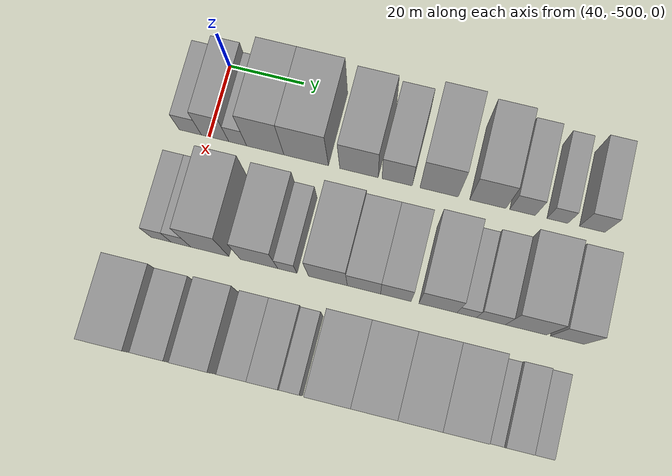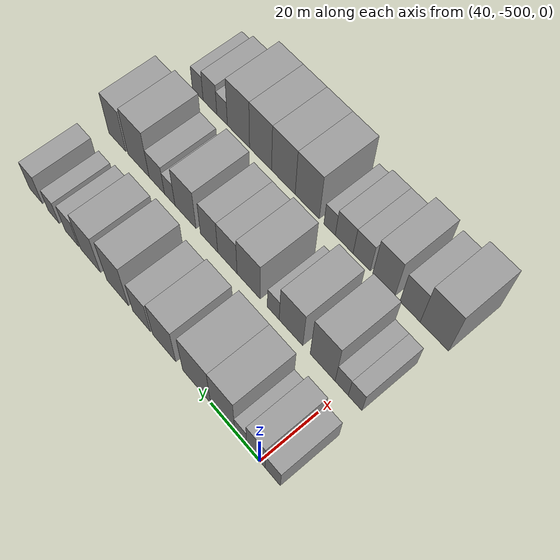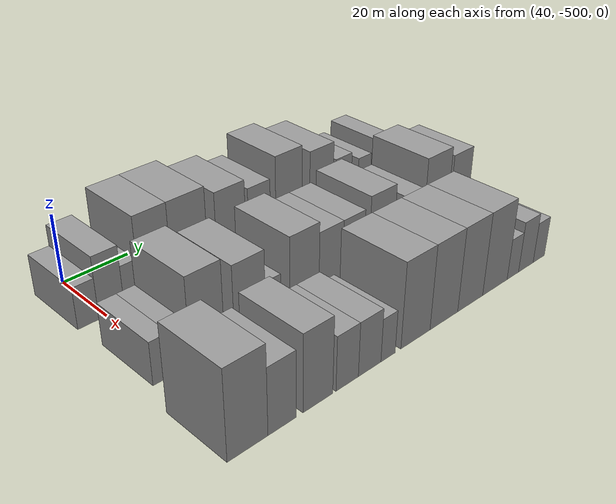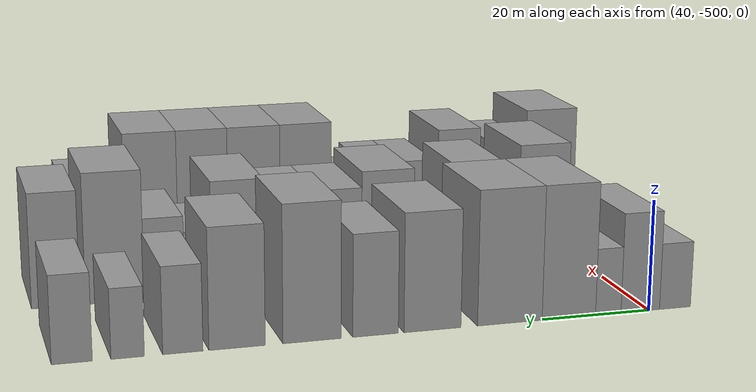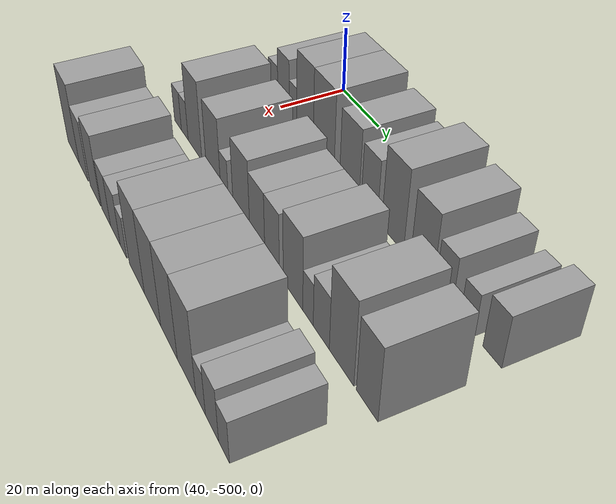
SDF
<sdf version="1.6">
 <world name="default">
  <model name="building_1">
   <static>1</static>
   <pose>50.0000 -505.0160 0 0.000000 0.000000 0.000000</pose>
   <link name="link">
    <pose>0 0 6.00 0 0 0</pose>
    <collision name="collision"><geometry><box><size>20.0000 5.9680 12.0000</size></box></geometry></collision>
    <visual name="visual">
     <cast_shadows>0</cast_shadows>
     <geometry><box><size>20.0000 5.9680 12.0000</size></box></geometry>
     <material>
      <script>
       <uri>model://grey_wall/materials/scripts</uri>
       <uri>model://grey_wall/materials/textures</uri>
       <name>vrc/grey_wall</name>
      </script>
     </material>
    </visual>
   </link>
  </model>
  <model name="building_2">
   <static>1</static>
   <pose>50.0000 -498.3636 0 0.000000 0.000000 0.000000</pose>
   <link name="link">
    <pose>0 0 9.00 0 0 0</pose>
    <collision name="collision"><geometry><box><size>20.0000 7.3369 18.0000</size></box></geometry></collision>
    <visual name="visual">
     <cast_shadows>0</cast_shadows>
     <geometry><box><size>20.0000 7.3369 18.0000</size></box></geometry>
     <material>
      <script>
       <uri>model://grey_wall/materials/scripts</uri>
       <uri>model://grey_wall/materials/textures</uri>
       <name>vrc/grey_wall</name>
      </script>
     </material>
    </visual>
   </link>
  </model>
  <model name="building_3">
   <static>1</static>
   <pose>50.0000 -492.2943 0 0.000000 0.000000 0.000000</pose>
   <link name="link">
    <pose>0 0 6.00 0 0 0</pose>
    <collision name="collision"><geometry><box><size>20.0000 4.8018 12.0000</size></box></geometry></collision>
    <visual name="visual">
     <cast_shadows>0</cast_shadows>
     <geometry><box><size>20.0000 4.8018 12.0000</size></box></geometry>
     <material>
      <script>
       <uri>model://grey_wall/materials/scripts</uri>
       <uri>model://grey_wall/materials/textures</uri>
       <name>vrc/grey_wall</name>
      </script>
     </material>
    </visual>
   </link>
  </model>
  <model name="building_4">
   <static>1</static>
   <pose>50.0000 -484.9123 0 0.000000 0.000000 0.000000</pose>
   <link name="link">
    <pose>0 0 12.00 0 0 0</pose>
    <collision name="collision"><geometry><box><size>20.0000 9.9623 24.0000</size></box></geometry></collision>
    <visual name="visual">
     <cast_shadows>0</cast_shadows>
     <geometry><box><size>20.0000 9.9623 24.0000</size></box></geometry>
     <material>
      <script>
       <uri>model://grey_wall/materials/scripts</uri>
       <uri>model://grey_wall/materials/textures</uri>
       <name>vrc/grey_wall</name>
      </script>
     </material>
    </visual>
   </link>
  </model>
  <model name="building_5">
   <static>1</static>
   <pose>50.0000 -474.0198 0 0.000000 0.000000 0.000000</pose>
   <link name="link">
    <pose>0 0 12.00 0 0 0</pose>
    <collision name="collision"><geometry><box><size>20.0000 11.8226 24.0000</size></box></geometry></collision>
    <visual name="visual">
     <cast_shadows>0</cast_shadows>
     <geometry><box><size>20.0000 11.8226 24.0000</size></box></geometry>
     <material>
      <script>
       <uri>model://grey_wall/materials/scripts</uri>
       <uri>model://grey_wall/materials/textures</uri>
       <name>vrc/grey_wall</name>
      </script>
     </material>
    </visual>
   </link>
  </model>
  <model name="building_6">
   <static>1</static>
   <pose>50.0000 -460.0245 0 0.000000 0.000000 0.000000</pose>
   <link name="link">
    <pose>0 0 10.50 0 0 0</pose>
    <collision name="collision"><geometry><box><size>20.0000 10.1681 21.0000</size></box></geometry></collision>
    <visual name="visual">
     <cast_shadows>0</cast_shadows>
     <geometry><box><size>20.0000 10.1681 21.0000</size></box></geometry>
     <material>
      <script>
       <uri>model://grey_wall/materials/scripts</uri>
       <uri>model://grey_wall/materials/textures</uri>
       <name>vrc/grey_wall</name>
      </script>
     </material>
    </visual>
   </link>
  </model>
  <model name="building_7">
   <static>1</static>
   <pose>50.0000 -449.9485 0 0.000000 0.000000 0.000000</pose>
   <link name="link">
    <pose>0 0 9.00 0 0 0</pose>
    <collision name="collision"><geometry><box><size>20.0000 7.9838 18.0000</size></box></geometry></collision>
    <visual name="visual">
     <cast_shadows>0</cast_shadows>
     <geometry><box><size>20.0000 7.9838 18.0000</size></box></geometry>
     <material>
      <script>
       <uri>model://grey_wall/materials/scripts</uri>
       <uri>model://grey_wall/materials/textures</uri>
       <name>vrc/grey_wall</name>
      </script>
     </material>
    </visual>
   </link>
  </model>
  <model name="building_8">
   <static>1</static>
   <pose>50.0000 -438.9323 0 0.000000 0.000000 0.000000</pose>
   <link name="link">
    <pose>0 0 12.00 0 0 0</pose>
    <collision name="collision"><geometry><box><size>20.0000 10.0486 24.0000</size></box></geometry></collision>
    <visual name="visual">
     <cast_shadows>0</cast_shadows>
     <geometry><box><size>20.0000 10.0486 24.0000</size></box></geometry>
     <material>
      <script>
       <uri>model://grey_wall/materials/scripts</uri>
       <uri>model://grey_wall/materials/textures</uri>
       <name>vrc/grey_wall</name>
      </script>
     </material>
    </visual>
   </link>
  </model>
  <model name="building_9">
   <static>1</static>
   <pose>50.0000 -426.1717 0 0.000000 0.000000 0.000000</pose>
   <link name="link">
    <pose>0 0 10.50 0 0 0</pose>
    <collision name="collision"><geometry><box><size>20.0000 9.4726 21.0000</size></box></geometry></collision>
    <visual name="visual">
     <cast_shadows>0</cast_shadows>
     <geometry><box><size>20.0000 9.4726 21.0000</size></box></geometry>
     <material>
      <script>
       <uri>model://grey_wall/materials/scripts</uri>
       <uri>model://grey_wall/materials/textures</uri>
       <name>vrc/grey_wall</name>
      </script>
     </material>
    </visual>
   </link>
  </model>
  <model name="building_10">
   <static>1</static>
   <pose>50.0000 -417.1049 0 0.000000 0.000000 0.000000</pose>
   <link name="link">
    <pose>0 0 7.50 0 0 0</pose>
    <collision name="collision"><geometry><box><size>20.0000 6.6611 15.0000</size></box></geometry></collision>
    <visual name="visual">
     <cast_shadows>0</cast_shadows>
     <geometry><box><size>20.0000 6.6611 15.0000</size></box></geometry>
     <material>
      <script>
       <uri>model://grey_wall/materials/scripts</uri>
       <uri>model://grey_wall/materials/textures</uri>
       <name>vrc/grey_wall</name>
      </script>
     </material>
    </visual>
   </link>
  </model>
  <model name="building_11">
   <static>1</static>
   <pose>50.0000 -408.0522 0 0.000000 0.000000 0.000000</pose>
   <link name="link">
    <pose>0 0 6.00 0 0 0</pose>
    <collision name="collision"><geometry><box><size>20.0000 5.4442 12.0000</size></box></geometry></collision>
    <visual name="visual">
     <cast_shadows>0</cast_shadows>
     <geometry><box><size>20.0000 5.4442 12.0000</size></box></geometry>
     <material>
      <script>
       <uri>model://grey_wall/materials/scripts</uri>
       <uri>model://grey_wall/materials/textures</uri>
       <name>vrc/grey_wall</name>
      </script>
     </material>
    </visual>
   </link>
  </model>
  <model name="building_12">
   <static>1</static>
   <pose>50.0000 -399.0358 0 0.000000 0.000000 0.000000</pose>
   <link name="link">
    <pose>0 0 7.50 0 0 0</pose>
    <collision name="collision"><geometry><box><size>20.0000 6.5886 15.0000</size></box></geometry></collision>
    <visual name="visual">
     <cast_shadows>0</cast_shadows>
     <geometry><box><size>20.0000 6.5886 15.0000</size></box></geometry>
     <material>
      <script>
       <uri>model://grey_wall/materials/scripts</uri>
       <uri>model://grey_wall/materials/textures</uri>
       <name>vrc/grey_wall</name>
      </script>
     </material>
    </visual>
   </link>
  </model>
  <model name="building_117">
   <static>1</static>
   <pose>79.0000 -504.3518 0 0.000000 0.000000 0.000000</pose>
   <link name="link">
    <pose>0 0 6.00 0 0 0</pose>
    <collision name="collision"><geometry><box><size>20.0000 5.2963 12.0000</size></box></geometry></collision>
    <visual name="visual">
     <cast_shadows>0</cast_shadows>
     <geometry><box><size>20.0000 5.2963 12.0000</size></box></geometry>
     <material>
      <script>
       <uri>model://grey_wall/materials/scripts</uri>
       <uri>model://grey_wall/materials/textures</uri>
       <name>vrc/grey_wall</name>
      </script>
     </material>
    </visual>
   </link>
  </model>
  <model name="building_118">
   <static>1</static>
   <pose>79.0000 -499.1225 0 0.000000 0.000000 0.000000</pose>
   <link name="link">
    <pose>0 0 6.00 0 0 0</pose>
    <collision name="collision"><geometry><box><size>20.0000 5.1624 12.0000</size></box></geometry></collision>
    <visual name="visual">
     <cast_shadows>0</cast_shadows>
     <geometry><box><size>20.0000 5.1624 12.0000</size></box></geometry>
     <material>
      <script>
       <uri>model://grey_wall/materials/scripts</uri>
       <uri>model://grey_wall/materials/textures</uri>
       <name>vrc/grey_wall</name>
      </script>
     </material>
    </visual>
   </link>
  </model>
  <model name="building_119">
   <static>1</static>
   <pose>79.0000 -491.5424 0 0.000000 0.000000 0.000000</pose>
   <link name="link">
    <pose>0 0 12.00 0 0 0</pose>
    <collision name="collision"><geometry><box><size>20.0000 9.9978 24.0000</size></box></geometry></collision>
    <visual name="visual">
     <cast_shadows>0</cast_shadows>
     <geometry><box><size>20.0000 9.9978 24.0000</size></box></geometry>
     <material>
      <script>
       <uri>model://grey_wall/materials/scripts</uri>
       <uri>model://grey_wall/materials/textures</uri>
       <name>vrc/grey_wall</name>
      </script>
     </material>
    </visual>
   </link>
  </model>
  <model name="building_120">
   <static>1</static>
   <pose>79.0000 -478.6621 0 0.000000 0.000000 0.000000</pose>
   <link name="link">
    <pose>0 0 10.50 0 0 0</pose>
    <collision name="collision"><geometry><box><size>20.0000 9.7629 21.0000</size></box></geometry></collision>
    <visual name="visual">
     <cast_shadows>0</cast_shadows>
     <geometry><box><size>20.0000 9.7629 21.0000</size></box></geometry>
     <material>
      <script>
       <uri>model://grey_wall/materials/scripts</uri>
       <uri>model://grey_wall/materials/textures</uri>
       <name>vrc/grey_wall</name>
      </script>
     </material>
    </visual>
   </link>
  </model>
  <model name="building_121">
   <static>1</static>
   <pose>79.0000 -471.2783 0 0.000000 0.000000 0.000000</pose>
   <link name="link">
    <pose>0 0 6.00 0 0 0</pose>
    <collision name="collision"><geometry><box><size>20.0000 5.0046 12.0000</size></box></geometry></collision>
    <visual name="visual">
     <cast_shadows>0</cast_shadows>
     <geometry><box><size>20.0000 5.0046 12.0000</size></box></geometry>
     <material>
      <script>
       <uri>model://grey_wall/materials/scripts</uri>
       <uri>model://grey_wall/materials/textures</uri>
       <name>vrc/grey_wall</name>
      </script>
     </material>
    </visual>
   </link>
  </model>
  <model name="building_122">
   <static>1</static>
   <pose>79.0000 -460.7591 0 0.000000 0.000000 0.000000</pose>
   <link name="link">
    <pose>0 0 10.50 0 0 0</pose>
    <collision name="collision"><geometry><box><size>20.0000 10.0338 21.0000</size></box></geometry></collision>
    <visual name="visual">
     <cast_shadows>0</cast_shadows>
     <geometry><box><size>20.0000 10.0338 21.0000</size></box></geometry>
     <material>
      <script>
       <uri>model://grey_wall/materials/scripts</uri>
       <uri>model://grey_wall/materials/textures</uri>
       <name>vrc/grey_wall</name>
      </script>
     </material>
    </visual>
   </link>
  </model>
  <model name="building_123">
   <static>1</static>
   <pose>79.0000 -451.4577 0 0.000000 0.000000 0.000000</pose>
   <link name="link">
    <pose>0 0 9.00 0 0 0</pose>
    <collision name="collision"><geometry><box><size>20.0000 8.5689 18.0000</size></box></geometry></collision>
    <visual name="visual">
     <cast_shadows>0</cast_shadows>
     <geometry><box><size>20.0000 8.5689 18.0000</size></box></geometry>
     <material>
      <script>
       <uri>model://grey_wall/materials/scripts</uri>
       <uri>model://grey_wall/materials/textures</uri>
       <name>vrc/grey_wall</name>
      </script>
     </material>
    </visual>
   </link>
  </model>
  <model name="building_124">
   <static>1</static>
   <pose>79.0000 -443.2523 0 0.000000 0.000000 0.000000</pose>
   <link name="link">
    <pose>0 0 9.00 0 0 0</pose>
    <collision name="collision"><geometry><box><size>20.0000 7.8421 18.0000</size></box></geometry></collision>
    <visual name="visual">
     <cast_shadows>0</cast_shadows>
     <geometry><box><size>20.0000 7.8421 18.0000</size></box></geometry>
     <material>
      <script>
       <uri>model://grey_wall/materials/scripts</uri>
       <uri>model://grey_wall/materials/textures</uri>
       <name>vrc/grey_wall</name>
      </script>
     </material>
    </visual>
   </link>
  </model>
  <model name="building_125">
   <static>1</static>
   <pose>79.0000 -432.4497 0 0.000000 0.000000 0.000000</pose>
   <link name="link">
    <pose>0 0 10.50 0 0 0</pose>
    <collision name="collision"><geometry><box><size>20.0000 9.7631 21.0000</size></box></geometry></collision>
    <visual name="visual">
     <cast_shadows>0</cast_shadows>
     <geometry><box><size>20.0000 9.7631 21.0000</size></box></geometry>
     <material>
      <script>
       <uri>model://grey_wall/materials/scripts</uri>
       <uri>model://grey_wall/materials/textures</uri>
       <name>vrc/grey_wall</name>
      </script>
     </material>
    </visual>
   </link>
  </model>
  <model name="building_126">
   <static>1</static>
   <pose>79.0000 -425.0778 0 0.000000 0.000000 0.000000</pose>
   <link name="link">
    <pose>0 0 6.00 0 0 0</pose>
    <collision name="collision"><geometry><box><size>20.0000 4.9808 12.0000</size></box></geometry></collision>
    <visual name="visual">
     <cast_shadows>0</cast_shadows>
     <geometry><box><size>20.0000 4.9808 12.0000</size></box></geometry>
     <material>
      <script>
       <uri>model://grey_wall/materials/scripts</uri>
       <uri>model://grey_wall/materials/textures</uri>
       <name>vrc/grey_wall</name>
      </script>
     </material>
    </visual>
   </link>
  </model>
  <model name="building_127">
   <static>1</static>
   <pose>79.0000 -418.9223 0 0.000000 0.000000 0.000000</pose>
   <link name="link">
    <pose>0 0 7.50 0 0 0</pose>
    <collision name="collision"><geometry><box><size>20.0000 7.3301 15.0000</size></box></geometry></collision>
    <visual name="visual">
     <cast_shadows>0</cast_shadows>
     <geometry><box><size>20.0000 7.3301 15.0000</size></box></geometry>
     <material>
      <script>
       <uri>model://grey_wall/materials/scripts</uri>
       <uri>model://grey_wall/materials/textures</uri>
       <name>vrc/grey_wall</name>
      </script>
     </material>
    </visual>
   </link>
  </model>
  <model name="building_128">
   <static>1</static>
   <pose>79.0000 -410.0112 0 0.000000 0.000000 0.000000</pose>
   <link name="link">
    <pose>0 0 12.00 0 0 0</pose>
    <collision name="collision"><geometry><box><size>20.0000 10.4921 24.0000</size></box></geometry></collision>
    <visual name="visual">
     <cast_shadows>0</cast_shadows>
     <geometry><box><size>20.0000 10.4921 24.0000</size></box></geometry>
     <material>
      <script>
       <uri>model://grey_wall/materials/scripts</uri>
       <uri>model://grey_wall/materials/textures</uri>
       <name>vrc/grey_wall</name>
      </script>
     </material>
    </visual>
   </link>
  </model>
  <model name="building_129">
   <static>1</static>
   <pose>79.0000 -399.5034 0 0.000000 0.000000 0.000000</pose>
   <link name="link">
    <pose>0 0 10.50 0 0 0</pose>
    <collision name="collision"><geometry><box><size>20.0000 8.5235 21.0000</size></box></geometry></collision>
    <visual name="visual">
     <cast_shadows>0</cast_shadows>
     <geometry><box><size>20.0000 8.5235 21.0000</size></box></geometry>
     <material>
      <script>
       <uri>model://grey_wall/materials/scripts</uri>
       <uri>model://grey_wall/materials/textures</uri>
       <name>vrc/grey_wall</name>
      </script>
     </material>
    </visual>
   </link>
  </model>
  <model name="building_230">
   <static>1</static>
   <pose>108.0000 -504.5432 0 0.000000 0.000000 0.000000</pose>
   <link name="link">
    <pose>0 0 12.00 0 0 0</pose>
    <collision name="collision"><geometry><box><size>20.0000 10.9135 24.0000</size></box></geometry></collision>
    <visual name="visual">
     <cast_shadows>0</cast_shadows>
     <geometry><box><size>20.0000 10.9135 24.0000</size></box></geometry>
     <material>
      <script>
       <uri>model://grey_wall/materials/scripts</uri>
       <uri>model://grey_wall/materials/textures</uri>
       <name>vrc/grey_wall</name>
      </script>
     </material>
    </visual>
   </link>
  </model>
  <model name="building_231">
   <static>1</static>
   <pose>108.0000 -495.0894 0 0.000000 0.000000 0.000000</pose>
   <link name="link">
    <pose>0 0 9.00 0 0 0</pose>
    <collision name="collision"><geometry><box><size>20.0000 7.9941 18.0000</size></box></geometry></collision>
    <visual name="visual">
     <cast_shadows>0</cast_shadows>
     <geometry><box><size>20.0000 7.9941 18.0000</size></box></geometry>
     <material>
      <script>
       <uri>model://grey_wall/materials/scripts</uri>
       <uri>model://grey_wall/materials/textures</uri>
       <name>vrc/grey_wall</name>
      </script>
     </material>
    </visual>
   </link>
  </model>
  <model name="building_232">
   <static>1</static>
   <pose>108.0000 -484.6208 0 0.000000 0.000000 0.000000</pose>
   <link name="link">
    <pose>0 0 10.50 0 0 0</pose>
    <collision name="collision"><geometry><box><size>20.0000 8.9432 21.0000</size></box></geometry></collision>
    <visual name="visual">
     <cast_shadows>0</cast_shadows>
     <geometry><box><size>20.0000 8.9432 21.0000</size></box></geometry>
     <material>
      <script>
       <uri>model://grey_wall/materials/scripts</uri>
       <uri>model://grey_wall/materials/textures</uri>
       <name>vrc/grey_wall</name>
      </script>
     </material>
    </visual>
   </link>
  </model>
  <model name="building_233">
   <static>1</static>
   <pose>108.0000 -475.5964 0 0.000000 0.000000 0.000000</pose>
   <link name="link">
    <pose>0 0 7.50 0 0 0</pose>
    <collision name="collision"><geometry><box><size>20.0000 7.1057 15.0000</size></box></geometry></collision>
    <visual name="visual">
     <cast_shadows>0</cast_shadows>
     <geometry><box><size>20.0000 7.1057 15.0000</size></box></geometry>
     <material>
      <script>
       <uri>model://grey_wall/materials/scripts</uri>
       <uri>model://grey_wall/materials/textures</uri>
       <name>vrc/grey_wall</name>
      </script>
     </material>
    </visual>
   </link>
  </model>
  <model name="building_234">
   <static>1</static>
   <pose>108.0000 -468.3089 0 0.000000 0.000000 0.000000</pose>
   <link name="link">
    <pose>0 0 7.50 0 0 0</pose>
    <collision name="collision"><geometry><box><size>20.0000 7.4692 15.0000</size></box></geometry></collision>
    <visual name="visual">
     <cast_shadows>0</cast_shadows>
     <geometry><box><size>20.0000 7.4692 15.0000</size></box></geometry>
     <material>
      <script>
       <uri>model://grey_wall/materials/scripts</uri>
       <uri>model://grey_wall/materials/textures</uri>
       <name>vrc/grey_wall</name>
      </script>
     </material>
    </visual>
   </link>
  </model>
  <model name="building_235">
   <static>1</static>
   <pose>108.0000 -462.1326 0 0.000000 0.000000 0.000000</pose>
   <link name="link">
    <pose>0 0 6.00 0 0 0</pose>
    <collision name="collision"><geometry><box><size>20.0000 4.8836 12.0000</size></box></geometry></collision>
    <visual name="visual">
     <cast_shadows>0</cast_shadows>
     <geometry><box><size>20.0000 4.8836 12.0000</size></box></geometry>
     <material>
      <script>
       <uri>model://grey_wall/materials/scripts</uri>
       <uri>model://grey_wall/materials/textures</uri>
       <name>vrc/grey_wall</name>
      </script>
     </material>
    </visual>
   </link>
  </model>
  <model name="building_236">
   <static>1</static>
   <pose>108.0000 -452.4264 0 0.000000 0.000000 0.000000</pose>
   <link name="link">
    <pose>0 0 12.00 0 0 0</pose>
    <collision name="collision"><geometry><box><size>20.0000 10.5286 24.0000</size></box></geometry></collision>
    <visual name="visual">
     <cast_shadows>0</cast_shadows>
     <geometry><box><size>20.0000 10.5286 24.0000</size></box></geometry>
     <material>
      <script>
       <uri>model://grey_wall/materials/scripts</uri>
       <uri>model://grey_wall/materials/textures</uri>
       <name>vrc/grey_wall</name>
      </script>
     </material>
    </visual>
   </link>
  </model>
  <model name="building_237">
   <static>1</static>
   <pose>108.0000 -441.8584 0 0.000000 0.000000 0.000000</pose>
   <link name="link">
    <pose>0 0 12.00 0 0 0</pose>
    <collision name="collision"><geometry><box><size>20.0000 10.6075 24.0000</size></box></geometry></collision>
    <visual name="visual">
     <cast_shadows>0</cast_shadows>
     <geometry><box><size>20.0000 10.6075 24.0000</size></box></geometry>
     <material>
      <script>
       <uri>model://grey_wall/materials/scripts</uri>
       <uri>model://grey_wall/materials/textures</uri>
       <name>vrc/grey_wall</name>
      </script>
     </material>
    </visual>
   </link>
  </model>
  <model name="building_238">
   <static>1</static>
   <pose>108.0000 -431.5126 0 0.000000 0.000000 0.000000</pose>
   <link name="link">
    <pose>0 0 12.00 0 0 0</pose>
    <collision name="collision"><geometry><box><size>20.0000 10.0840 24.0000</size></box></geometry></collision>
    <visual name="visual">
     <cast_shadows>0</cast_shadows>
     <geometry><box><size>20.0000 10.0840 24.0000</size></box></geometry>
     <material>
      <script>
       <uri>model://grey_wall/materials/scripts</uri>
       <uri>model://grey_wall/materials/textures</uri>
       <name>vrc/grey_wall</name>
      </script>
     </material>
    </visual>
   </link>
  </model>
  <model name="building_239">
   <static>1</static>
   <pose>108.0000 -421.2547 0 0.000000 0.000000 0.000000</pose>
   <link name="link">
    <pose>0 0 12.00 0 0 0</pose>
    <collision name="collision"><geometry><box><size>20.0000 10.4318 24.0000</size></box></geometry></collision>
    <visual name="visual">
     <cast_shadows>0</cast_shadows>
     <geometry><box><size>20.0000 10.4318 24.0000</size></box></geometry>
     <material>
      <script>
       <uri>model://grey_wall/materials/scripts</uri>
       <uri>model://grey_wall/materials/textures</uri>
       <name>vrc/grey_wall</name>
      </script>
     </material>
    </visual>
   </link>
  </model>
  <model name="building_240">
   <static>1</static>
   <pose>108.0000 -413.5154 0 0.000000 0.000000 0.000000</pose>
   <link name="link">
    <pose>0 0 6.00 0 0 0</pose>
    <collision name="collision"><geometry><box><size>20.0000 5.0469 12.0000</size></box></geometry></collision>
    <visual name="visual">
     <cast_shadows>0</cast_shadows>
     <geometry><box><size>20.0000 5.0469 12.0000</size></box></geometry>
     <material>
      <script>
       <uri>model://grey_wall/materials/scripts</uri>
       <uri>model://grey_wall/materials/textures</uri>
       <name>vrc/grey_wall</name>
      </script>
     </material>
    </visual>
   </link>
  </model>
  <model name="building_241">
   <static>1</static>
   <pose>108.0000 -407.6738 0 0.000000 0.000000 0.000000</pose>
   <link name="link">
    <pose>0 0 7.50 0 0 0</pose>
    <collision name="collision"><geometry><box><size>20.0000 6.6363 15.0000</size></box></geometry></collision>
    <visual name="visual">
     <cast_shadows>0</cast_shadows>
     <geometry><box><size>20.0000 6.6363 15.0000</size></box></geometry>
     <material>
      <script>
       <uri>model://grey_wall/materials/scripts</uri>
       <uri>model://grey_wall/materials/textures</uri>
       <name>vrc/grey_wall</name>
      </script>
     </material>
    </visual>
   </link>
  </model>
  <model name="building_242">
   <static>1</static>
   <pose>108.0000 -401.7204 0 0.000000 0.000000 0.000000</pose>
   <link name="link">
    <pose>0 0 6.00 0 0 0</pose>
    <collision name="collision"><geometry><box><size>20.0000 5.2705 12.0000</size></box></geometry></collision>
    <visual name="visual">
     <cast_shadows>0</cast_shadows>
     <geometry><box><size>20.0000 5.2705 12.0000</size></box></geometry>
     <material>
      <script>
       <uri>model://grey_wall/materials/scripts</uri>
       <uri>model://grey_wall/materials/textures</uri>
       <name>vrc/grey_wall</name>
      </script>
     </material>
    </visual>
   </link>
  </model>
 </world>
</sdf>
